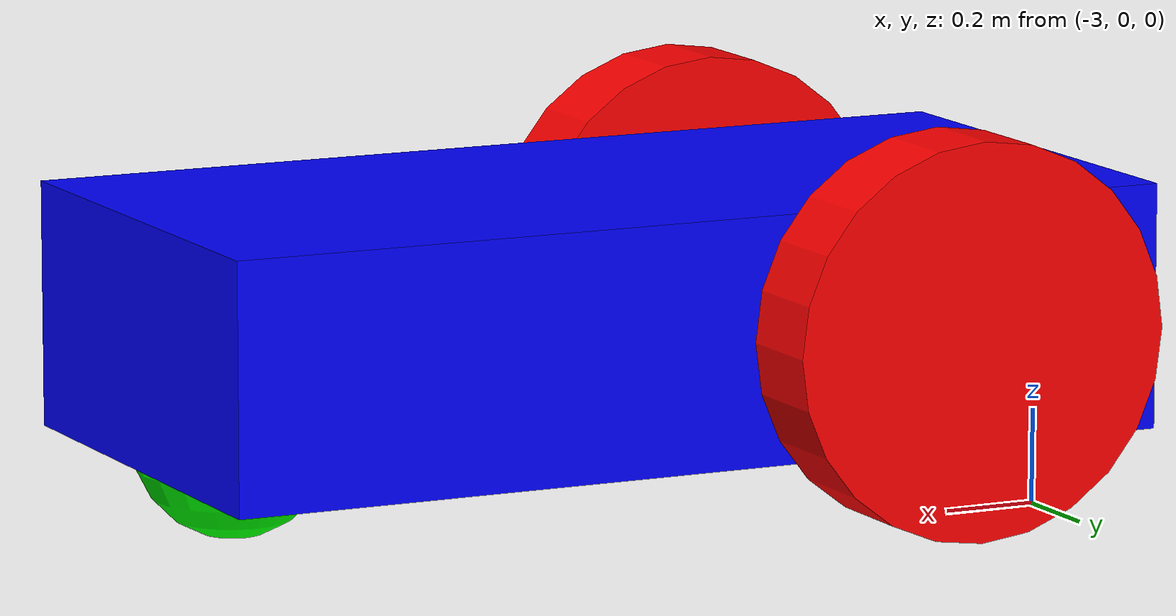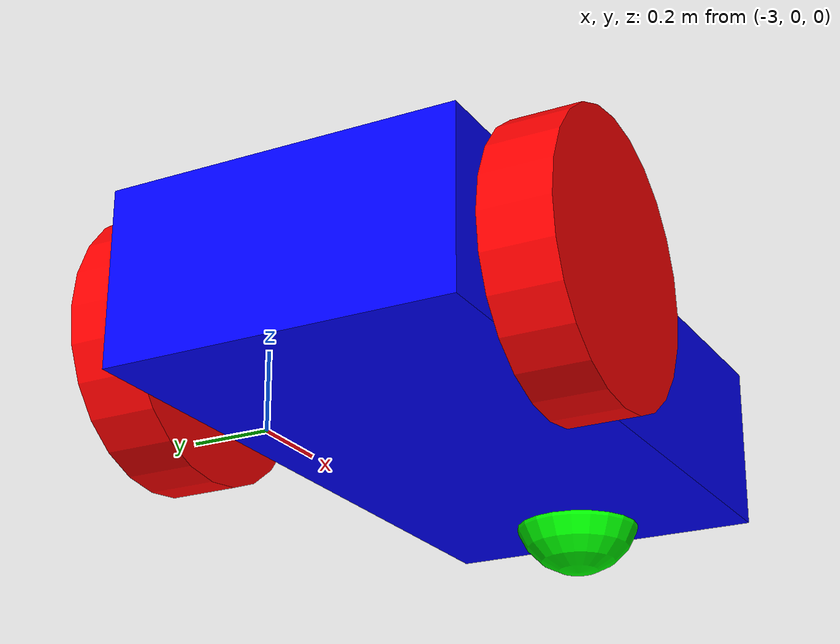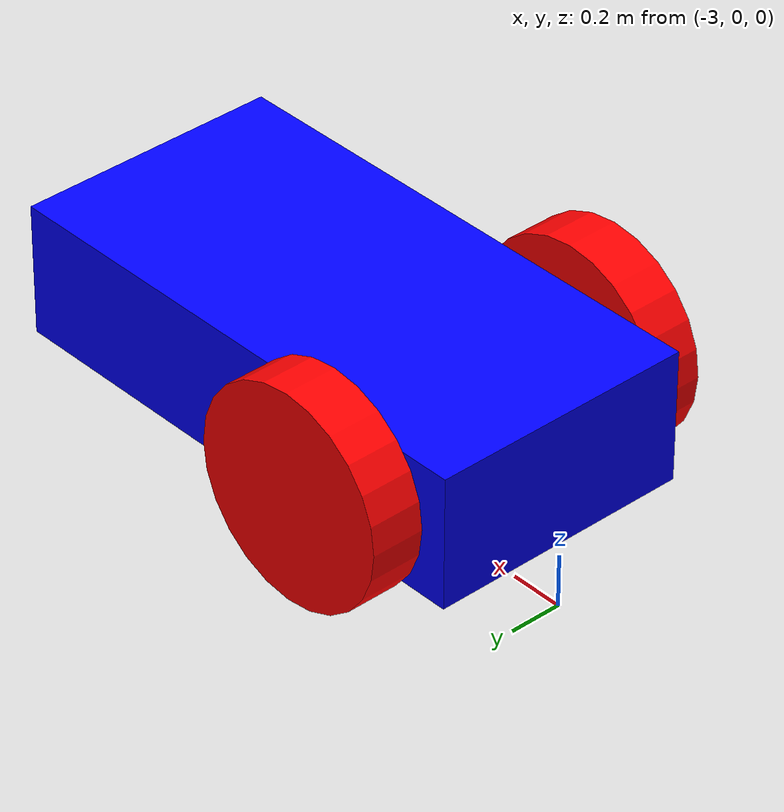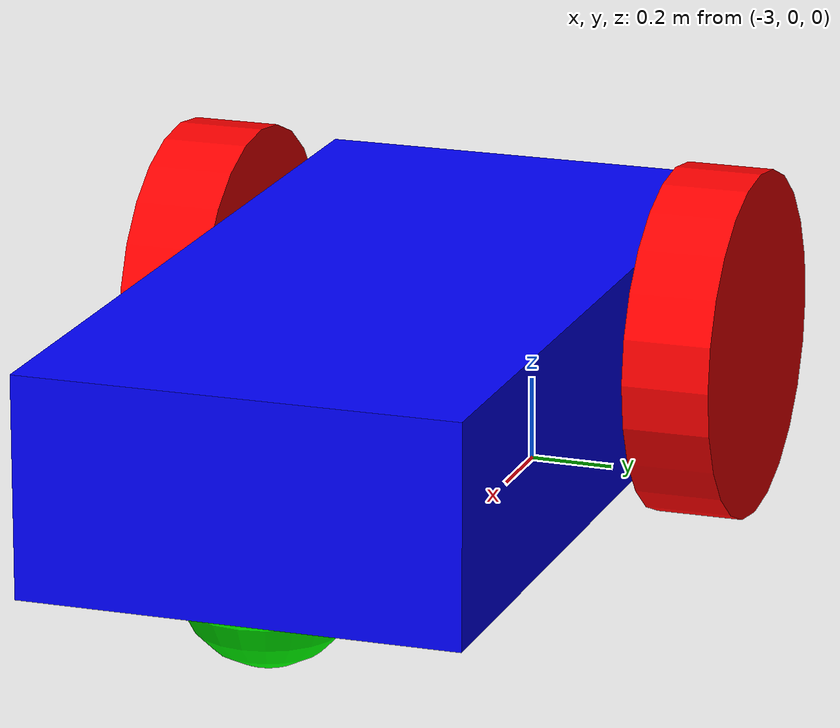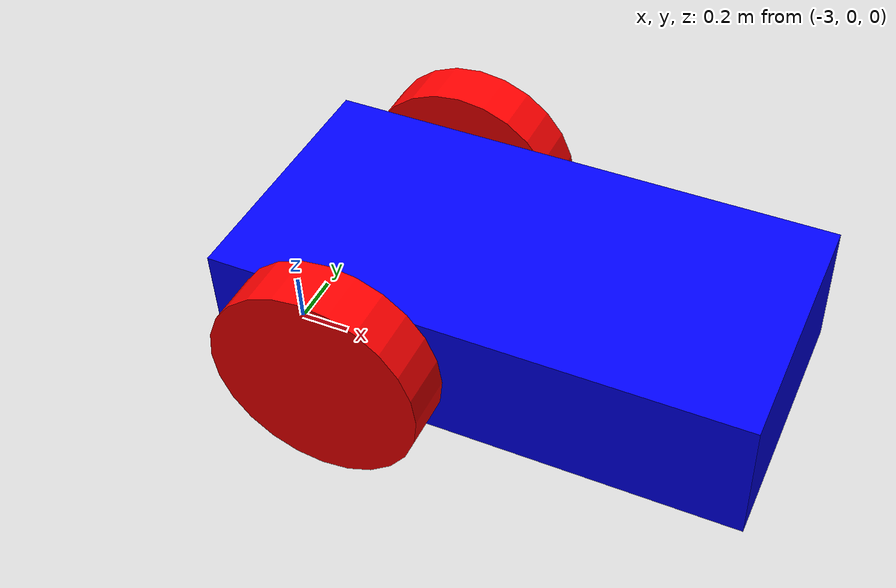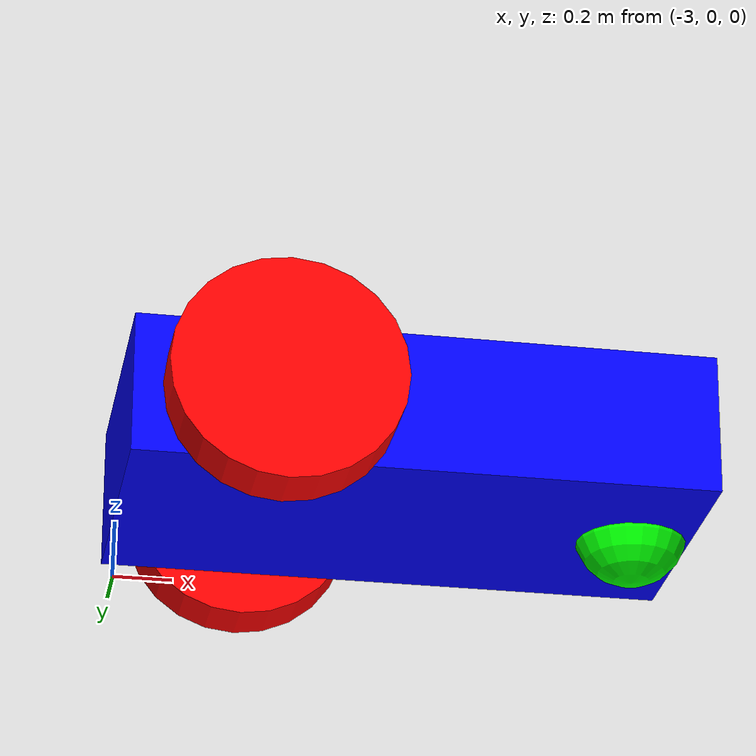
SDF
<sdf version='1.9'>
  <model name='uvg_0'>
    <link name='chassis_link'>
      <inertial>
        <pose>0 0 0 0 0 0</pose>
        <mass>10</mass>
        <inertia>
          <ixx>1.041666666666667</ixx>
          <ixy>0</ixy>
          <ixz>0</ixz>
          <iyy>4.1666666666666661</iyy>
          <iyz>0</iyz>
          <izz>3.541666666666667</izz>
        </inertia>
      </inertial>
      <collision name='chassis_link_collision'>
        <pose>0 0 0 0 0 0</pose>
        <geometry>
          <box>
            <size>2 1 0.5</size>
          </box>
        </geometry>
      </collision>
      <visual name='chassis_link_visual'>
        <pose>0 0 0 0 0 0</pose>
        <geometry>
          <box>
            <size>2 1 0.5</size>
          </box>
        </geometry>
        <material>
          <diffuse>0 0 1 1</diffuse>
          <ambient>0 0 1 1</ambient>
        </material>
      </visual>
    </link>
    <joint name='caster_wheel_joint' type='revolute'>
      <pose relative_to='chassis_link'>0.8 0 -0.2 0 0 0</pose>
      <parent>chassis_link</parent>
      <child>caster_link</child>
      <axis>
        <xyz>1 0 0</xyz>
        <limit>
          <lower>-10000000000000000</lower>
          <upper>10000000000000000</upper>
        </limit>
        <dynamics>
          <spring_reference>0</spring_reference>
          <spring_stiffness>0</spring_stiffness>
        </dynamics>
      </axis>
    </joint>
    <link name='caster_link'>
      <pose relative_to='caster_wheel_joint'>0 0 0 0 0 0</pose>
      <inertial>
        <pose>0 0 0 0 0 0</pose>
        <mass>1</mass>
        <inertia>
          <ixx>0.016</ixx>
          <ixy>0</ixy>
          <ixz>0</ixz>
          <iyy>0.016</iyy>
          <iyz>0</iyz>
          <izz>0.016</izz>
        </inertia>
      </inertial>
      <collision name='caster_link_collision'>
        <pose>0 0 0 0 0 0</pose>
        <geometry>
          <sphere>
            <radius>0.20000000000000001</radius>
          </sphere>
        </geometry>
      </collision>
      <visual name='caster_link_visual'>
        <pose>0 0 0 0 0 0</pose>
        <geometry>
          <sphere>
            <radius>0.20000000000000001</radius>
          </sphere>
        </geometry>
        <material>
          <diffuse>0 1 0 1</diffuse>
          <ambient>0 1 0 1</ambient>
        </material>
      </visual>
    </link>
    <joint name='left_rear_wheel_joint' type='revolute'>
      <pose relative_to='chassis_link'>-0.5 0.6 0 1.570796326794896 0 0</pose>
      <parent>chassis_link</parent>
      <child>left_rear_wheel_link</child>
      <axis>
        <xyz>0 1 0</xyz>
        <limit>
          <lower>-1.7976900000000001e+308</lower>
          <upper>1.7976900000000001e+308</upper>
          <effort>100</effort>
          <velocity>100</velocity>
        </limit>
        <dynamics>
          <spring_reference>0</spring_reference>
          <spring_stiffness>0</spring_stiffness>
        </dynamics>
      </axis>
    </joint>
    <link name='left_rear_wheel_link'>
      <pose relative_to='left_rear_wheel_joint'>0 0 0 0 0 0</pose>
      <inertial>
        <pose>0 0 0 0 0 0</pose>
        <mass>2</mass>
        <inertia>
          <ixx>0.086666666666666684</ixx>
          <ixy>0</ixy>
          <ixz>0</ixz>
          <iyy>0.086666666666666684</iyy>
          <iyz>0</iyz>
          <izz>0.16</izz>
        </inertia>
      </inertial>
      <collision name='left_rear_wheel_link_collision'>
        <pose>0 0 0 0 0 0</pose>
        <geometry>
          <cylinder>
            <length>0.20000000000000001</length>
            <radius>0.40000000000000002</radius>
          </cylinder>
        </geometry>
      </collision>
      <visual name='left_rear_wheel_link_visual'>
        <pose>0 0 0 0 0 0</pose>
        <geometry>
          <cylinder>
            <length>0.20000000000000001</length>
            <radius>0.40000000000000002</radius>
          </cylinder>
        </geometry>
        <material>
          <diffuse>1 0 0 1</diffuse>
          <ambient>1 0 0 1</ambient>
        </material>
      </visual>
    </link>
    <joint name='right_rear_wheel_joint' type='revolute'>
      <pose relative_to='chassis_link'>-0.5 -0.6 0 1.570796326794896 0 0</pose>
      <parent>chassis_link</parent>
      <child>right_rear_wheel_link</child>
      <axis>
        <xyz>0 1 0</xyz>
        <limit>
          <lower>-1.7976900000000001e+308</lower>
          <upper>1.7976900000000001e+308</upper>
          <effort>100</effort>
          <velocity>100</velocity>
        </limit>
        <dynamics>
          <spring_reference>0</spring_reference>
          <spring_stiffness>0</spring_stiffness>
        </dynamics>
      </axis>
    </joint>
    <link name='right_rear_wheel_link'>
      <pose relative_to='right_rear_wheel_joint'>0 0 0 0 0 0</pose>
      <inertial>
        <pose>0 0 0 0 0 0</pose>
        <mass>2</mass>
        <inertia>
          <ixx>0.086666666666666684</ixx>
          <ixy>0</ixy>
          <ixz>0</ixz>
          <iyy>0.086666666666666684</iyy>
          <iyz>0</iyz>
          <izz>0.16</izz>
        </inertia>
      </inertial>
      <collision name='right_rear_wheel_link_collision'>
        <pose>0 0 0 0 0 0</pose>
        <geometry>
          <cylinder>
            <length>0.20000000000000001</length>
            <radius>0.40000000000000002</radius>
          </cylinder>
        </geometry>
      </collision>
      <visual name='right_rear_wheel_link_visual'>
        <pose>0 0 0 0 0 0</pose>
        <geometry>
          <cylinder>
            <length>0.20000000000000001</length>
            <radius>0.40000000000000002</radius>
          </cylinder>
        </geometry>
        <material>
          <diffuse>1 0 0 1</diffuse>
          <ambient>1 0 0 1</ambient>
        </material>
      </visual>
    </link>
    <static>false</static>
    <plugin name='ignition::gazebo::systems::DiffDrive' filename='libignition-gazebo-diff-drive-system.so'>
      <left_joint>left_rear_wheel_joint</left_joint>
      <right_joint>right_rear_wheel_joint</right_joint>
      <wheel_separation>1.2</wheel_separation>
      <wheel_radius>0.4</wheel_radius>
      <odom_publish_frequency>1</odom_publish_frequency>
      <topic>cmd_vel</topic>
    </plugin>
    <plugin name='ignition::gazebo::systems::CommsEndpoint' filename='ignition-gazebo-comms-endpoint-system'>
      <address>ugv_0</address>
      <topic>ugv_0/rx</topic>
    </plugin>
    <pose>-2 0 0.5 0 0 0</pose>
  </model>
</sdf>
